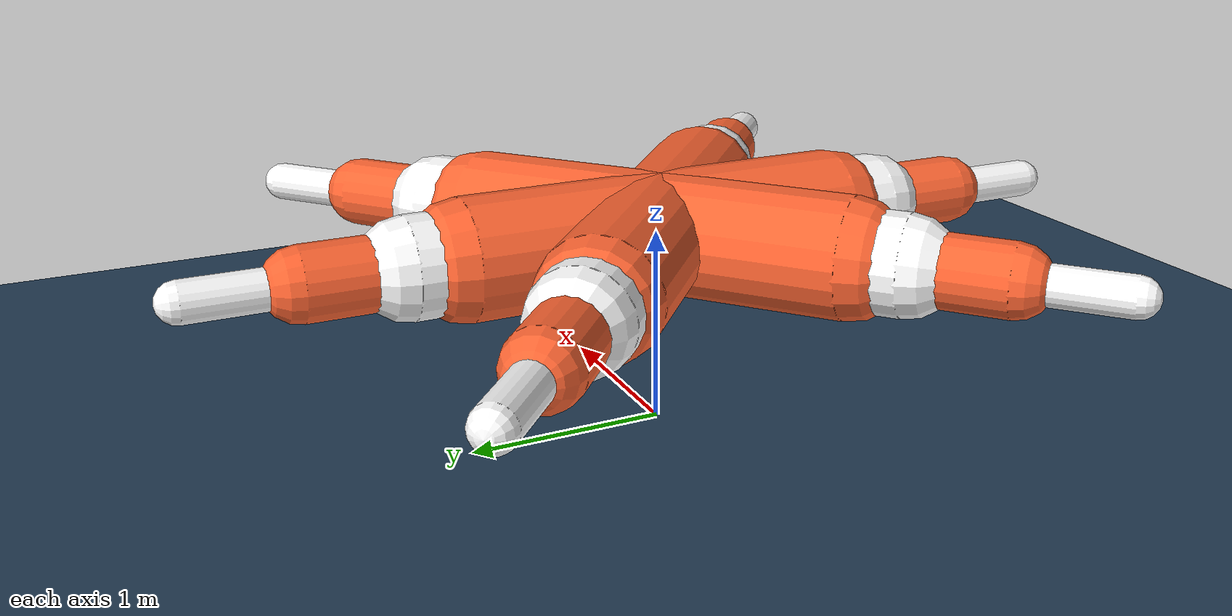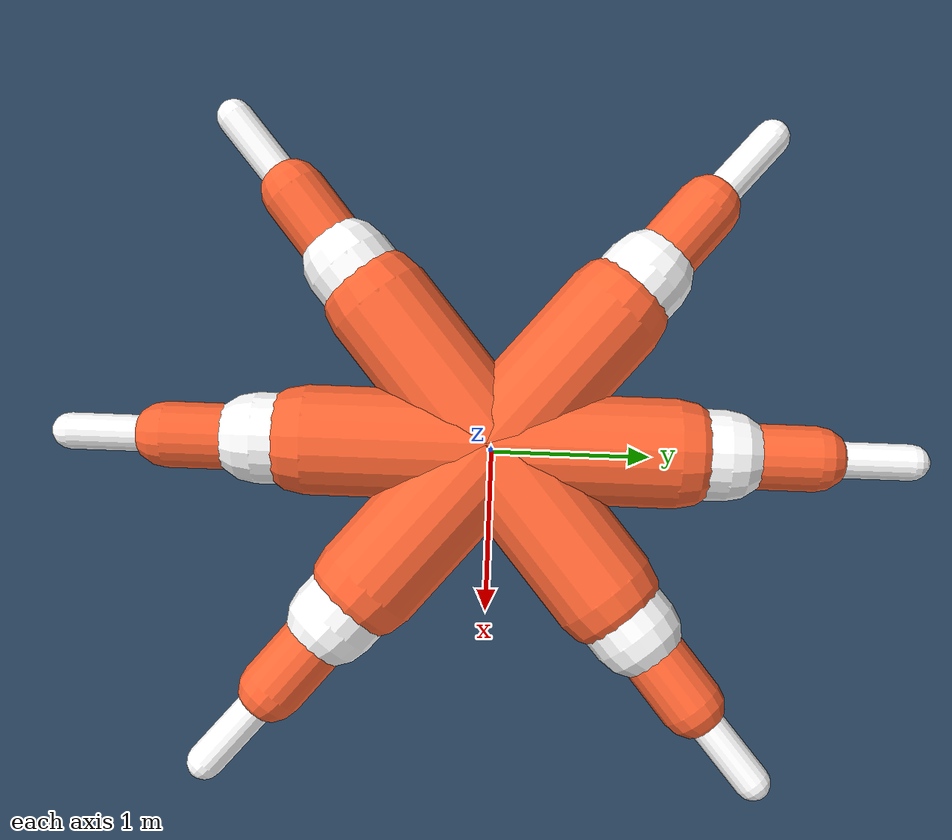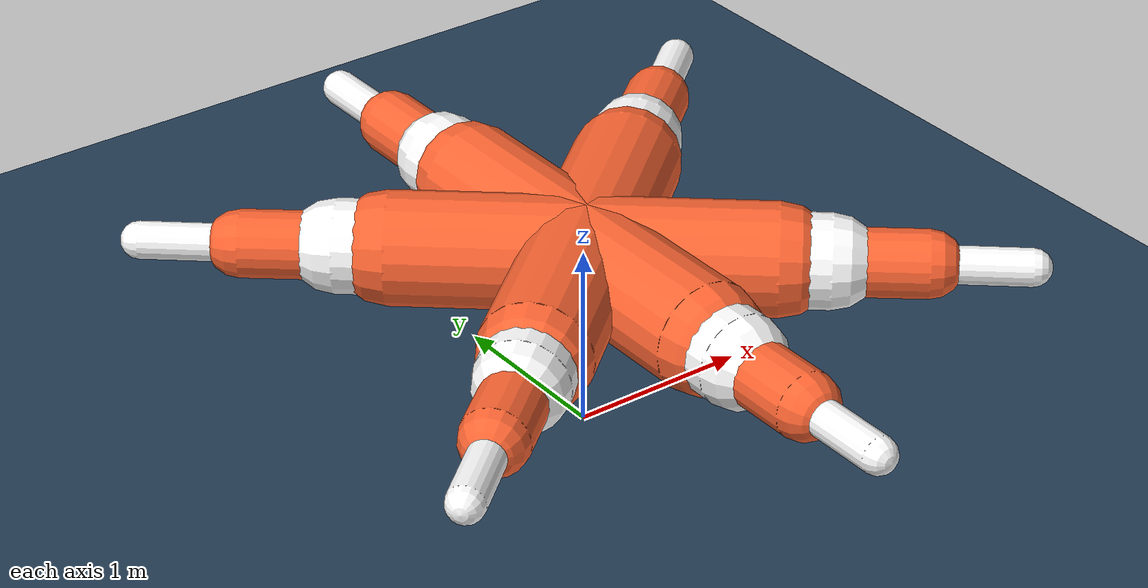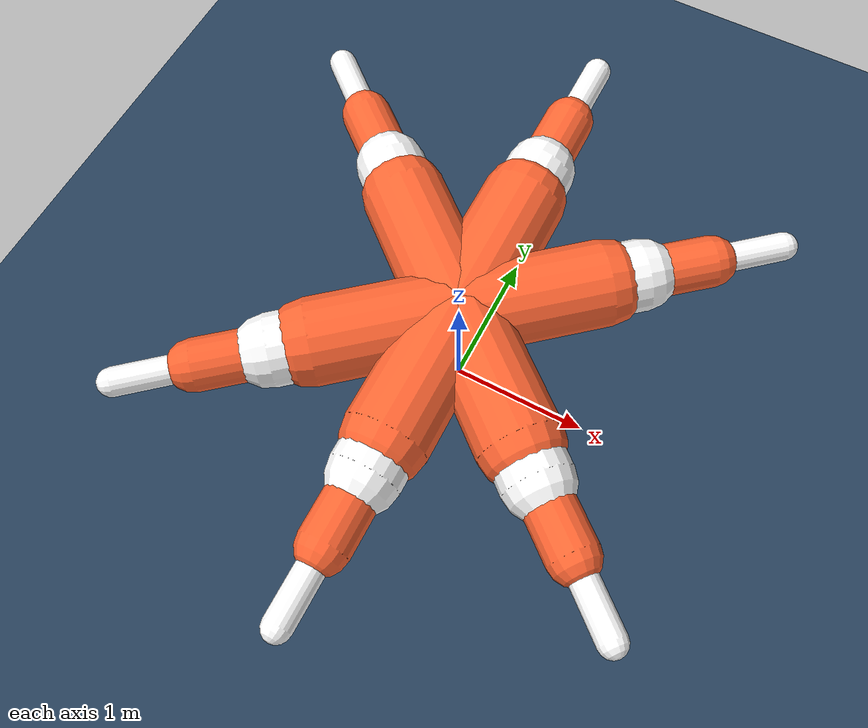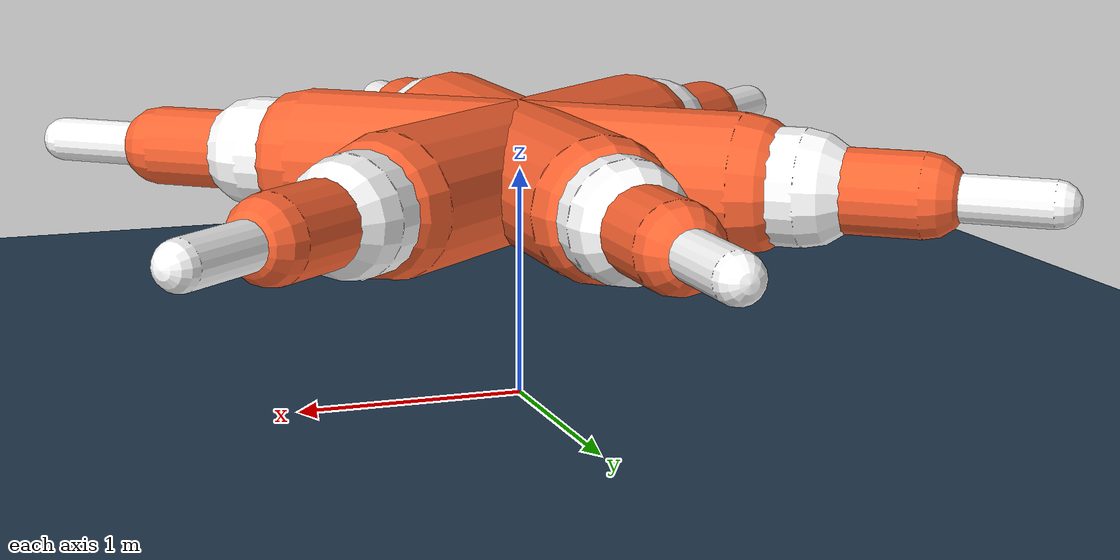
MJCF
<mujoco model="Spider scene">
    <include file="spider.xml"/>

    <statistic center="0 0 0.1" extent="0.6" meansize=".05"/>

    <visual>
        <headlight diffuse="0.6 0.6 0.6" ambient="0.3 0.3 0.3" specular="0 0 0"/>
        <rgba haze="0.15 0.25 0.35 1"/>
        <global azimuth="-20" elevation="-20" ellipsoidinertia="true"/>
    </visual>

    <asset>
        <texture type="skybox" builtin="gradient" rgb1="0.3 0.5 0.7" rgb2="0 0 0" width="512" height="3072"/>
        <texture type="2d" name="groundplane" builtin="checker" mark="edge" rgb1="0.2 0.3 0.4" rgb2="0.1 0.2 0.3"
            markrgb="0.8 0.8 0.8" width="300" height="300"/>
        <material name="groundplane" texture="groundplane" texuniform="true" texrepeat="5 5" reflectance="0.2"/>
    </asset>

    <worldbody>
        <light pos="0 0 1.5" dir="0 0 -1" directional="true"/>
        <geom name="floor" size="0 0 0.05" type="plane" material="groundplane"/>
    </worldbody>
</mujoco>

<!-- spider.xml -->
<mujoco>
    <compiler inertiafromgeom="true" angle="degree"/>

    <default>
        <joint limited="true" damping="1" armature="0"/>
        <geom condim="1"/>
        <position ctrlrange="-.4 .4" ctrllimited="true"/>
    </default>

    <option timestep="0.005" iterations="50" tolerance="1e-10" solver="Newton" jacobian="dense" cone="pyramidal"/>
    <size nconmax="50" njmax="200" nstack="10000"/>

    <visual>
        <map force="0.1" zfar="30"/>
        <quality shadowsize="2048"/>
    </visual>

    <asset>
        <texture type="skybox" builtin="gradient" rgb1="0.3 0.5 0.7" rgb2="0.6 0.6 0.9" width="512" height="512"/>
        <texture name="texture_floor" type="2d" builtin="flat" rgb1=".2 .3 .4" rgb2=".2 .3 .4" width="512" height="512" mark="cross" markrgb=".8 .8 .8"/>
        <material name="material_floor" reflectance="0" texture="texture_floor" shininess="1" specular="1" texrepeat="1 1" texuniform="true"/>

        <texture name="texture1" type="cube" builtin="flat" mark="none" width="127" height="1278" rgb1="1 0.4 0.2" rgb2="1 0.4 0.2" markrgb="1 1 1" />
        <texture name="texture2" type="cube" builtin="flat" mark="none" width="127" height="1278" rgb1="1 1 1" rgb2="1 1 1" markrgb="1 1 1"/>
        <texture name="texture3" type="cube" builtin="flat" mark="none" width="127" height="1278" rgb1="1 0.4 0.2" rgb2="1 0.4 0.2" markrgb="1 1 1"/>
        <texture name="texture4" type="cube" builtin="flat" mark="none" width="127" height="1278" rgb1="1 1 1" rgb2="1 1 1" markrgb="1 1 1"/>

        <material name="material1" texture="texture1" texuniform="true" rgba="1 1 1 1" specular="0.1"/>
        <material name="material2" texture="texture2" texuniform="true" rgba="1 1 1 1" specular="0.1"/>
        <material name="material3" texture="texture3" texuniform="true" rgba="1 1 1 1" specular="0.1"/>
        <material name="material4" texture="texture4" texuniform="true" rgba="1 1 1 1" specular="0.1"/>
    </asset>

    <worldbody>
        <light mode="trackcom" target="spider" cutoff="100" diffuse="1 1 1" dir="-0 0 -1.3" directional="true" exponent="1" pos="0 0 1.3" specular=".1 .1 .1"/>
        <camera name="track1" mode="trackcom" target="spider" pos="0 -6 6" euler="45 0 0"/>
        <camera name="track2" mode="trackcom" target="spider" pos="0 -6 3" euler="70 0 0"/>
        <camera name="track3" mode="trackcom" target="spider" pos="6 -6 3" xyaxes="1 1 0 -0.3 0 1"/>
        <camera name="track4" mode="trackcom" target="spider" pos="6 0 3" xyaxes="0 1 0 -0.3 0 1"/>
        <camera name="track5" mode="trackcom" target="spider" pos="6 0 6" xyaxes="0 1 0 -0.8 0 1"/>
        <camera name="track6" mode="targetbody" target="spider" pos="30 -10 1"/>
        <body name="spider" pos="0 0 1">
            <freejoint name="root"/>
            <geom mass="3500" type="capsule" fromto="-.766 .6428 0 .766 -.6428 0"  size="0.3 0.3" material="material1"/>
            <geom mass="3500" type="capsule" fromto=".766 .6428 0 -.766 -.6428 0"  size="0.3 0.3" material="material1"/>
            <geom mass="3500" type="capsule" fromto="0 1 0 0 -1 0"  size="0.3 0.3" material="material1"/>
            <body name="leg1" pos="0 1 0">
                <joint name="1"  type="hinge" pos="0 0 0" damping="900" axis="0 0 1" range="-90 90"   />
                <geom type="capsule" material="material2" fromto="0 0 0 0 0.27 0"  size="0.25 0.25" />
                <body pos="0 0.27 0">
                    <joint name="7" type="hinge" pos="0 0 0" damping="900" axis="1 0 0" range="-90 0"    />
                    <geom friction="000 000 000" type="capsule" material="material3" fromto="0 0 0 0 0.49 0"  size="0.18 0.18" />
                    <body pos="0 0.49 0">
                        <joint name="13" type="hinge" pos="0 0 0" damping="900" axis="1 0 0" range="-90 0"    />
                        <geom friction="000 0390 000"  type="capsule" material="material4" fromto="0 0 0 0 0.52 0"  size=".1 .1" />
                    </body>

                </body>
            </body>

            <body name="leg4" pos="0 -1 0">
                <joint name="4" type="hinge" pos="0 0 0" axis="0 0 1" damping="900" range="-90 90"   />
                <geom type="capsule" material="material2" fromto="0 0 0 0 -.27 0"  size="0.25 0.25" />
                <body pos="0 -.27 0">
                    <joint name="10" type="hinge" pos="0 0 0" axis="-1 0 0" damping="900" range="-90 0"   />
                    <geom friction="000 000 000" type="capsule" material="material3" fromto="0 0 0 0 -.49 0"  size="0.18 0.18" />
                    <body pos="0 -.49 0">
                        <joint name="16" type="hinge" pos="0 0 0" axis="-1 0 0" damping="900" range="-90 0"   />
                        <geom friction="000 0390 000" type="capsule" material="material4" fromto="0 0 0 0 -.52 0"  size=".1 .1" />
                    </body>

                </body>
            </body>

            <body name="leg2" pos="0.766 0.6428 0">
                <joint name="2" type="hinge" pos="0 0 0" axis="0 0 1" damping="900" range="-90 90"   />
                <geom type="capsule" material="material2" fromto="0 0 0 0.204 0.174 0"  size="0.25 0.25" />
                <body pos=".204 .174 0">
                    <joint name="8" type="hinge" pos="0 0 0" axis=".5 -.65 0" damping="900" range="-90 0"   />
                    <geom friction="000 000 000" type="capsule" material="material3" fromto="0 0 0 .38 .314 0"  size="0.18 0.18" />
                    <body pos=".38 .314 0">
                        <joint name="14" type="hinge" pos="0 0 0" axis=".5 -.65 0" damping="900" range="-90 0"   />
                        <geom friction="000 0390 000" type="capsule" material="material4" fromto="0 0 0 .4 .34 0"  size=".1 .1" />
                    </body>

                </body>
            </body>

            <body name="leg6" pos="-.766 .6428 0">
                <joint name="6" type="hinge" pos="0 0 0" axis="0 0 1" damping="900" range="-90 90"   />
                <geom type="capsule" material="material2" fromto="0 0 0 -.204 .174 0"  size="0.25 0.25" />
                <body pos="-.204 .174 0">
                    <joint name="12" type="hinge" pos="0 0 0" axis=".5 .65 0" damping="900" range="-90 0"   />
                    <geom friction="000 000 000" type="capsule" material="material3" fromto="0 0 0 -.38 .314 0"  size="0.18 0.18" />
                    <body pos="-.38 .314 0">
                        <joint name="18" type="hinge" pos="0 0 0" axis=".5 .65 0" damping="900" range="-90 0"   />
                        <geom friction="000 0390 000" type="capsule" material="material4" fromto="0 0 0 -.4 .34 0"  size=".1 .1" />
                    </body>

                </body>
            </body>

            <body name="leg3" pos=".766 -.6428 0">
                <joint name="3" type="hinge" pos="0 0 0" axis="0 0 1" damping="900" range="-90 90"   />
                <geom type="capsule" material="material2" fromto="0 0 0 .204 -.174 0"  size="0.25 0.25" />
                <body pos=".204 -.174 0">
                    <joint name="9" type="hinge" pos="0 0 0" axis="-.5 -.65 0" damping="900" range="-90 0"   />
                    <geom friction="000 000 000" type="capsule" material="material3" fromto="0 0 0 .38 -.314 0"  size="0.18 0.18" />
                    <body pos=".38 -.314 0">
                        <joint name="15" type="hinge" pos="0 0 0" axis="-.5 -.65 0" damping="900" range="-90 0"   />
                        <geom friction="000 0390 000" type="capsule" material="material4" fromto="0 0 0 .4 -.34 0"  size=".1 .1" />
                    </body>

                </body>
            </body>

            <body name="leg5" pos="-.766 -.6428 0">
                <joint name="5" type="hinge" pos="0 0 0" axis="0 0 1" range="-90 90" damping="900" />
                <geom type="capsule" material="material2" fromto="0 0 0 -.204 -.174 0"  size="0.25 0.25" />
                <body pos="-.204 -.174 0">
                    <joint name="11" type="hinge" pos="0 0 0" axis="-.5 .65 0"  damping="900" range="-90 0"   />
                    <geom friction="000 000 000" type="capsule" material="material3" fromto="0 0 0 -.38 -.314 0"  size="0.18 0.18" />
                    <body pos="-.38 -.314 0">
                        <joint name="17" type="hinge" pos="0 0 0" axis="-.5 .65 0" damping="900" range="-90 0"   />
                        <geom friction="000 0390 000" type="capsule" material="material4" fromto="0 0 0 -.4 -.34 0"  size=".1 .1" />
                    </body>

                </body>
            </body>
        </body>
    </worldbody>

    <actuator>
        <position ctrllimited="true" ctrlrange="-90 90" gear="55" kp="5" name="g1" joint="1"/>
        <position ctrllimited="true" ctrlrange="-90 90" gear="55" kp="5" name="g2" joint="2" />
        <position ctrllimited="true" ctrlrange="-90 90" gear="55" kp="5" name="g3" joint="3" />
        <position ctrllimited="true" ctrlrange="-90 90" gear="55" kp="5" name="g4" joint="4" />
        <position ctrllimited="true" ctrlrange="-90 90" gear="55" kp="5" name="g5" joint="5" />
        <position ctrllimited="true" ctrlrange="-90 90" gear="55" kp="5" name="g6" joint="6" />

        <position ctrllimited="true" ctrlrange="-90 0" gear="55" kp="5" name="g_g1" joint="7" />
        <position ctrllimited="true" ctrlrange="-90 0" gear="55" kp="5" name="g_g2" joint="8" />
        <position ctrllimited="true" ctrlrange="-90 0" gear="55" kp="5" name="g_g3" joint="9" />
        <position ctrllimited="true" ctrlrange="-90 0" gear="55" kp="5" name="g_g4" joint="10" />
        <position ctrllimited="true" ctrlrange="-90 0" gear="55" kp="5" name="g_g5" joint="11" />
        <position ctrllimited="true" ctrlrange="-90 0" gear="55" kp="5" name="g_g6" joint="12" />

        <position ctrllimited="true" ctrlrange="-90 0" gear="55" kp="5" name="g_g_g1" joint="13" />
        <position ctrllimited="true" ctrlrange="-90 0" gear="55" kp="5" name="g_g_g2" joint="14" />
        <position ctrllimited="true" ctrlrange="-90 0" gear="55" kp="5" name="g_g_g3" joint="15" />
        <position ctrllimited="true" ctrlrange="-90 0" gear="55" kp="5" name="g_g_g4" joint="16" />
        <position ctrllimited="true" ctrlrange="-90 0" gear="55" kp="5" name="g_g_g5" joint="17" />
        <position ctrllimited="true" ctrlrange="-90 0" gear="55" kp="5" name="g_g_g6" joint="18" />
    </actuator>
</mujoco>
